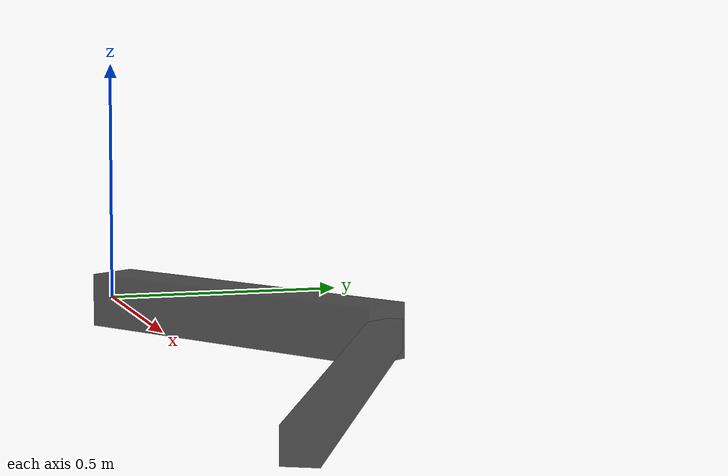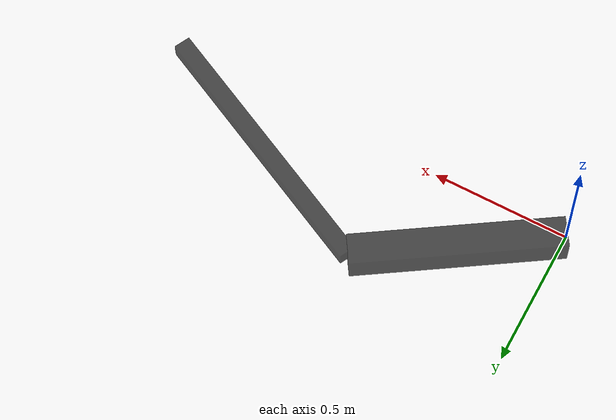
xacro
<?xml version='1.0' encoding='utf-8'?>
<robot xmlns:xacro="http://www.ros.org/wiki/xacro" name="2link_robot">

    <xacro:arg name="is_sim" default="true" />
    <xacro:arg name="is_ignition" default="true" />

    <xacro:include filename="$(find daadbot_desc)/urdf/2_link_urdf/2link_gazebo.xacro" />
    <xacro:include filename="$(find daadbot_desc)/urdf/2_link_urdf/2link_ros2_control.xacro" />

    <material name="black">
        <color rgba="0 0 0 0.7" />
    </material>
    <material name="white">
        <color rgba="1 1 1 0.7" />
    </material>

    <link name="world" />

    <joint name="base_joint" type="fixed">
        <parent link="world" />
        <child link="base" />
        <origin xyz="0 0 0" rpy="0 0 0" />
    </joint>

    <link name="base">
        <inertial>
            <mass value="1.0" />
            <origin xyz="0 0 0" />
            <inertia ixx="0.1" ixy="0" ixz="0" iyy="0.1" iyz="0" izz="0.1" />
        </inertial>
    </link>

    <link name="arm1">
        <visual>
            <geometry>
                <box size="0.75 .11 .11" />
            </geometry>
            <origin rpy="0 0 0" xyz="0.375 0 0" />
            <material name="black" />
        </visual>
        <collision>
            <geometry>
                <box size="0.75 .11 .11" />
            </geometry>
            <origin rpy="0 0 0" xyz="0.375 0 0" />
        </collision>
        <inertial>
            <origin rpy="0 0 0" xyz="0.375 0 0" />
            <mass value="2.0" />
            <inertia ixx="0.001" ixy="0" ixz="0" iyy="0.08" iyz="0" izz="0.08" />
        </inertial>
    </link>

    <joint name="baseHinge" type="revolute">
        <axis rpy="0 0 0" xyz="0 0 1" />
        <limit effort="50.0" velocity="0.5" lower="-1000.0" upper="1000.0" />
        <parent link="base" />
        <child link="arm1" />
    <origin rpy="0 0 0.5772411021609789" xyz="0 0 0" /></joint>

    <link name="arm2">
        <visual>
            <geometry>
                <box size="1 .06 .06" />
            </geometry>
            <origin rpy="0 0 0" xyz="0.5 0 0" />
            <material name="black" />
        </visual>
        <collision>
            <geometry>
                <box size="1 .06 .06" />
            </geometry>
            <origin rpy="0 0 0" xyz="0.5 0 0" />
        </collision>
        <inertial>
            <origin rpy="0 0 0" xyz="0.5 0 0" />
            <mass value="1.5" />
            <inertia ixx="0.001" ixy="0" ixz="0" iyy="0.08" iyz="0" izz="0.08" />
        </inertial>
    </link>

    <joint name="interArm" type="revolute">
        <axis rpy="0 0 0" xyz="0 0 1" />
        <limit effort="30.0" velocity="0.5" lower="-1000.0" upper="1000.0" />
        <parent link="arm1" />
        <child link="arm2" />
        <origin rpy="0 0 -1.0307324155578172" xyz="0.75 0 0" />
    </joint>

    <link name="endEffector">
        <inertial>
            <mass value="0.01" />
            <origin xyz="0 0 0" />
            <inertia ixx="0.0001" ixy="0" ixz="0" iyy="0.0001" iyz="0" izz="0.0001" />
        </inertial>
    </link>

    <joint name="ee_joint" type="fixed">
        <parent link="arm2" />
        <child link="endEffector" />
        <origin rpy="0 0 0" xyz="1 0 0" />
    </joint>

</robot>
